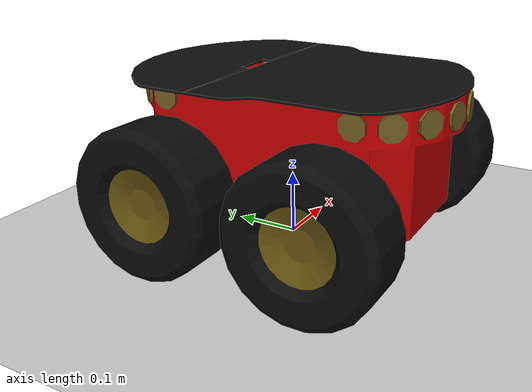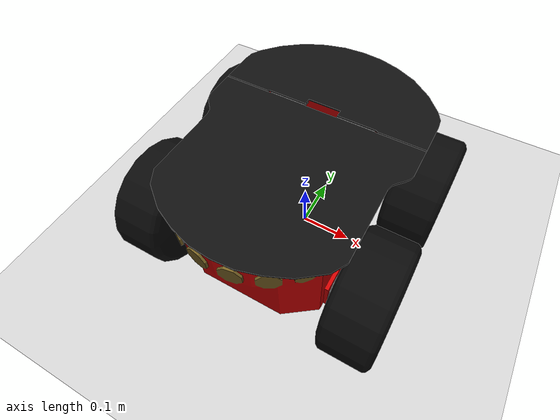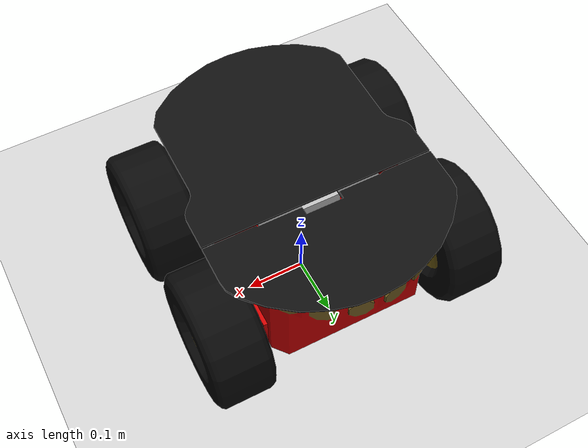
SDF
<sdf version="1.6">
 <world name="default">
  <light name="sun" type="directional">
   <pose>0 0 10 0 -0 0</pose>
   <diffuse>0.8 0.8 0.8 1</diffuse>
   <specular>0.1 0.1 0.1 1</specular>
   <attenuation>
    <range>1000</range>
    <constant>0.9</constant>
    <linear>0.01</linear>
    <quadratic>0.001</quadratic>
   </attenuation>
   <direction>-0.5 0.5 -1</direction>
  </light>
  <model name="ground_plane">
   <static>1</static>
   <link name="link">
    <collision name="collision">
     <geometry><plane><normal>0 0 1</normal><size>100 100</size></plane></geometry>
     <surface><friction><ode><mu>100</mu><mu2>50</mu2></ode></friction></surface>
    </collision>
    <visual name="visual">
     <cast_shadows>0</cast_shadows>
     <geometry><plane><normal>0 0 1</normal><size>100 100</size></plane></geometry>
     <material>
      <script><uri>file://media/materials/scripts/gazebo.material</uri><name>Gazebo/Grey</name></script>
     </material>
    </visual>
   </link>
  </model>
  <gravity>0 0 -9.8</gravity>
  <magnetic_field>6e-06 2.3e-05 -4.2e-05</magnetic_field>
  <atmosphere type="adiabatic"/>
  <physics name="default_physics" default="0" type="ode">
   <max_step_size>0.001</max_step_size>
   <real_time_factor>1</real_time_factor>
   <real_time_update_rate>1000</real_time_update_rate>
  </physics>
  <scene><ambient>0.4 0.4 0.4 1</ambient><background>0.7 0.7 0.7 1</background><shadows>1</shadows></scene>
  <spherical_coordinates>
   <surface_model>EARTH_WGS84</surface_model>
   <latitude_deg>0</latitude_deg>
   <longitude_deg>0</longitude_deg>
   <elevation>0</elevation>
   <heading_deg>0</heading_deg>
  </spherical_coordinates>
  <model name="pioneer3at">
   <pose>-0.00218 -0.01878 0.170003 1e-06 3e-06 1.56344</pose>
   <static>0</static>
   <link name="chassis">
    <inertial>
     <mass>14</mass>
     <inertia>
      <ixx>0.147117</ixx>
      <ixy>0</ixy>
      <ixz>0</ixz>
      <iyy>0.334951</iyy>
      <iyz>0</iyz>
      <izz>0.397834</izz>
     </inertia>
    </inertial>
    <collision name="collision"><geometry><box><size>0.501 0.3 0.19</size></box></geometry></collision>
    <visual name="visual">
     <geometry><mesh><uri>model://pioneer3at/meshes/chassis.dae</uri><scale>1 1 1</scale></mesh></geometry>
    </visual>
   </link>
   <link name="right_front_wheel">
    <pose>0.125 -0.201 -0.06 1.5707 -0 0</pose>
    <inertial>
     <mass>1.5</mass>
     <inertia>
      <ixx>0.00524062</ixx>
      <iyy>0.00524062</iyy>
      <izz>0.009075</izz>
      <ixy>0</ixy>
      <ixz>0</ixz>
      <iyz>0</iyz>
     </inertia>
    </inertial>
    <collision name="collision">
     <geometry><cylinder><radius>0.11</radius><length>0.075</length></cylinder></geometry>
     <surface><friction><ode><mu>1</mu><mu2>1</mu2><slip1>0.5</slip1><slip2>0</slip2></ode></friction></surface>
    </collision>
    <visual name="visual">
     <geometry><mesh><uri>model://pioneer3at/meshes/wheel.dae</uri><scale>1 1 1</scale></mesh></geometry>
    </visual>
   </link>
   <link name="left_front_wheel">
    <pose>0.125 0.201 -0.06 1.5707 -0 0</pose>
    <inertial>
     <mass>1.5</mass>
     <inertia>
      <ixx>0.00524062</ixx>
      <iyy>0.00524062</iyy>
      <izz>0.009075</izz>
      <ixy>0</ixy>
      <ixz>0</ixz>
      <iyz>0</iyz>
     </inertia>
    </inertial>
    <collision name="collision">
     <geometry><cylinder><radius>0.11</radius><length>0.075</length></cylinder></geometry>
     <surface><friction><ode><mu>1</mu><mu2>1</mu2><slip1>0.5</slip1><slip2>0</slip2></ode></friction></surface>
    </collision>
    <visual name="visual">
     <geometry><mesh><uri>model://pioneer3at/meshes/wheel.dae</uri><scale>1 1 1</scale></mesh></geometry>
    </visual>
   </link>
   <link name="right_rear_wheel">
    <pose>-0.125 -0.201 -0.06 1.5707 -0 0</pose>
    <inertial>
     <mass>1.5</mass>
     <inertia>
      <ixx>0.00524062</ixx>
      <iyy>0.00524062</iyy>
      <izz>0.009075</izz>
      <ixy>0</ixy>
      <ixz>0</ixz>
      <iyz>0</iyz>
     </inertia>
    </inertial>
    <collision name="collision">
     <geometry><cylinder><radius>0.11</radius><length>0.075</length></cylinder></geometry>
     <surface><friction><ode><mu>1</mu><mu2>1</mu2><slip1>0.5</slip1><slip2>0</slip2></ode></friction></surface>
    </collision>
    <visual name="visual">
     <geometry><mesh><uri>model://pioneer3at/meshes/wheel.dae</uri><scale>1 1 1</scale></mesh></geometry>
    </visual>
   </link>
   <link name="left_rear_wheel">
    <pose>-0.125 0.201 -0.06 1.5707 -0 0</pose>
    <inertial>
     <mass>1.5</mass>
     <inertia>
      <ixx>0.00524062</ixx>
      <iyy>0.00524062</iyy>
      <izz>0.009075</izz>
      <ixy>0</ixy>
      <ixz>0</ixz>
      <iyz>0</iyz>
     </inertia>
    </inertial>
    <collision name="collision">
     <geometry><cylinder><radius>0.11</radius><length>0.075</length></cylinder></geometry>
     <surface><friction><ode><mu>1</mu><mu2>1</mu2><slip1>0.5</slip1><slip2>0</slip2></ode></friction></surface>
    </collision>
    <visual name="visual">
     <geometry><mesh><uri>model://pioneer3at/meshes/wheel.dae</uri><scale>1 1 1</scale></mesh></geometry>
    </visual>
   </link>
   <joint name="right_front" type="revolute">
    <child>right_front_wheel</child>
    <parent>chassis</parent>
    <axis>
     <xyz>0 1 0</xyz>
     <use_parent_model_frame>1</use_parent_model_frame>
     <limit><lower>-1e+16</lower><upper>1e+16</upper></limit>
     <dynamics><spring_reference>0</spring_reference><spring_stiffness>0</spring_stiffness></dynamics>
    </axis>
   </joint>
   <joint name="right_rear" type="revolute">
    <child>right_rear_wheel</child>
    <parent>chassis</parent>
    <axis>
     <xyz>0 1 0</xyz>
     <use_parent_model_frame>1</use_parent_model_frame>
     <limit><lower>-1e+16</lower><upper>1e+16</upper></limit>
     <dynamics><spring_reference>0</spring_reference><spring_stiffness>0</spring_stiffness></dynamics>
    </axis>
   </joint>
   <joint name="left_front" type="revolute">
    <child>left_front_wheel</child>
    <parent>chassis</parent>
    <axis>
     <xyz>0 1 0</xyz>
     <use_parent_model_frame>1</use_parent_model_frame>
     <limit><lower>-1e+16</lower><upper>1e+16</upper></limit>
     <dynamics><spring_reference>0</spring_reference><spring_stiffness>0</spring_stiffness></dynamics>
    </axis>
   </joint>
   <joint name="left_rear" type="revolute">
    <child>left_rear_wheel</child>
    <parent>chassis</parent>
    <axis>
     <xyz>0 1 0</xyz>
     <use_parent_model_frame>1</use_parent_model_frame>
     <limit><lower>-1e+16</lower><upper>1e+16</upper></limit>
     <dynamics><spring_reference>0</spring_reference><spring_stiffness>0</spring_stiffness></dynamics>
    </axis>
   </joint>
   <plugin name="SkidSteerDrivePlugin" filename="libSkidSteerDrivePlugin.so"/>
   <link name="sonar_link">
    <inertial>
     <pose>-0.01 -0.012 0.33 0 -0 0</pose>
     <mass>0.39</mass>
     <inertia><ixx>0</ixx><ixy>0</ixy><ixz>0</ixz><iyy>0</iyy><iyz>0</iyz><izz>0</izz></inertia>
    </inertial>
    <collision name="collision">
     <geometry><box><size>0.1 0.1 0.1</size></box></geometry>
     <surface>
      <friction><ode><mu>1</mu><mu2>1</mu2></ode></friction>
      <contact><ode><kp>1e+07</kp><kd>1</kd><min_depth>0.001</min_depth><max_vel>0.1</max_vel></ode></contact>
     </surface>
    </collision>
    <visual name="visual"><geometry><box><size>0.1 0.1 0.1</size></box></geometry></visual>
    <sensor name="sonar_sensor_left" type="sonar">
     <pose>0 0 0.2 -2.89159 -1.47159 3.14159</pose>
     <sonar><min>0</min><max>2</max><radius>0.3</radius></sonar>
     <always_on>1</always_on>
     <update_rate>30</update_rate>
     <visualize>1</visualize>
    </sensor>
    <sensor name="sonar_sensor_right" type="sonar">
     <pose>0 0 0.2 2.89159 -1.47159 -3.14159</pose>
     <sonar><min>0</min><max>2</max><radius>0.3</radius></sonar>
     <always_on>1</always_on>
     <update_rate>30</update_rate>
     <visualize>1</visualize>
    </sensor>
   </link>
   <joint name="sonar_joint" type="revolute">
    <child>sonar_link</child>
    <parent>chassis</parent>
    <axis>
     <xyz>0 0 1</xyz>
     <use_parent_model_frame>1</use_parent_model_frame>
     <limit><lower>-1e+16</lower><upper>1e+16</upper></limit>
     <dynamics><spring_reference>0</spring_reference><spring_stiffness>0</spring_stiffness></dynamics>
    </axis>
   </joint>
  </model>
 </world>
</sdf>
